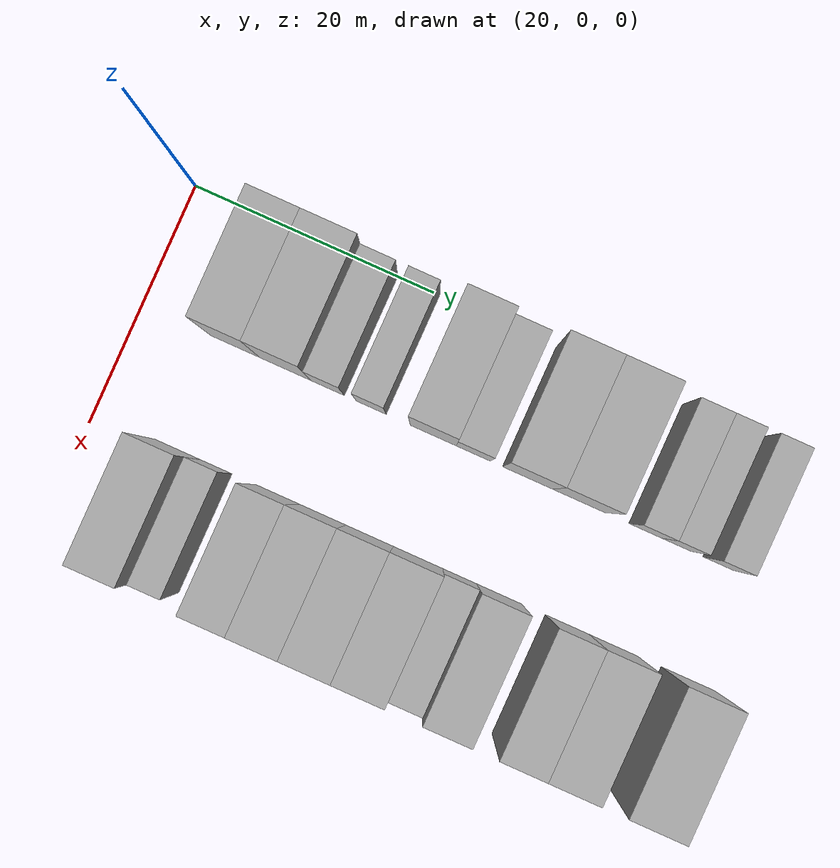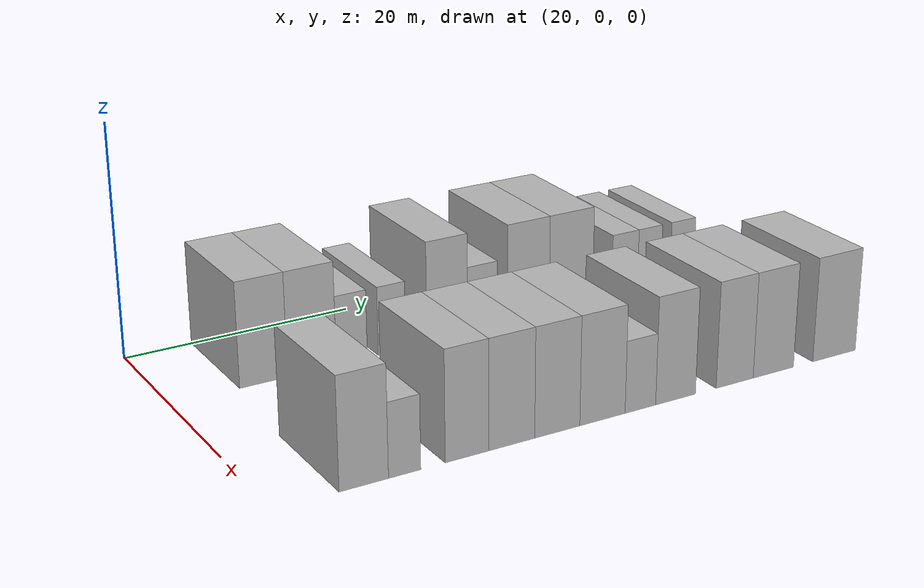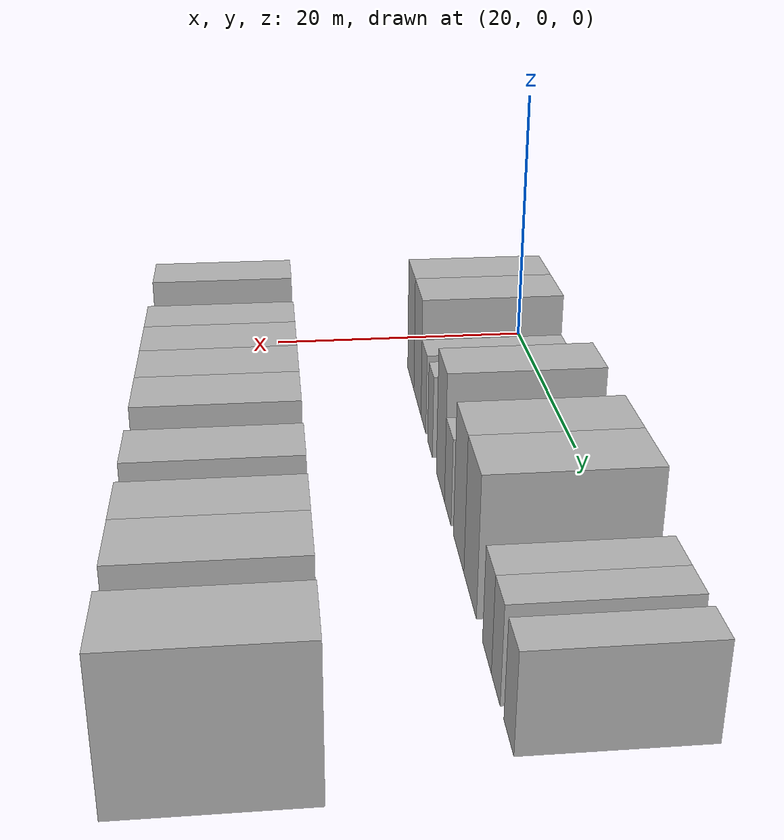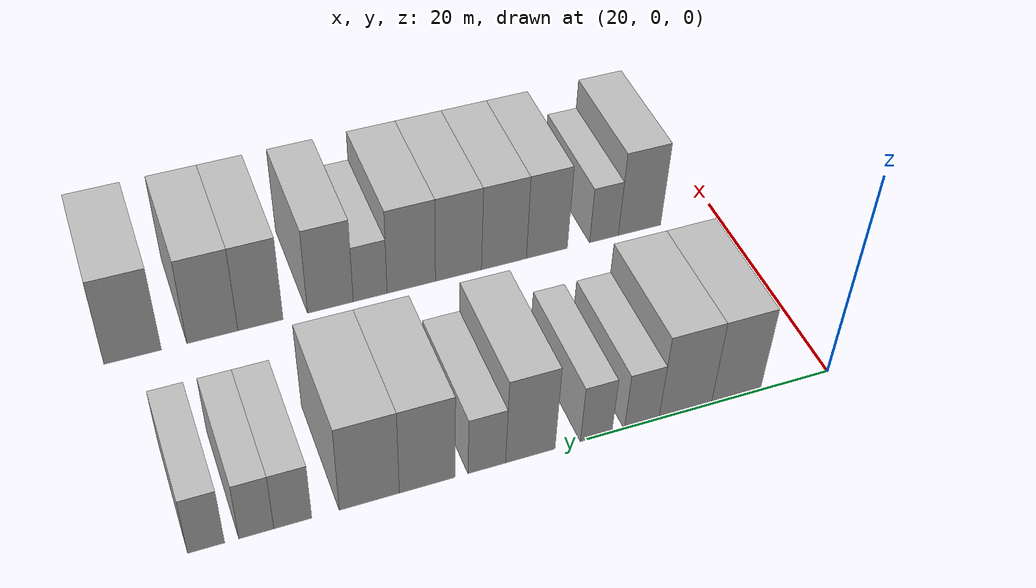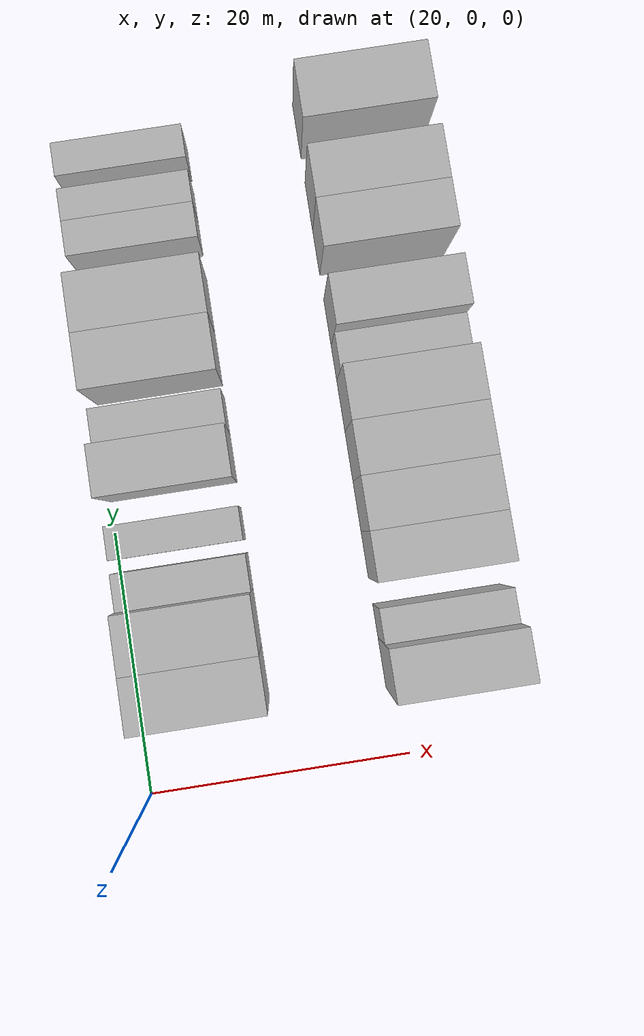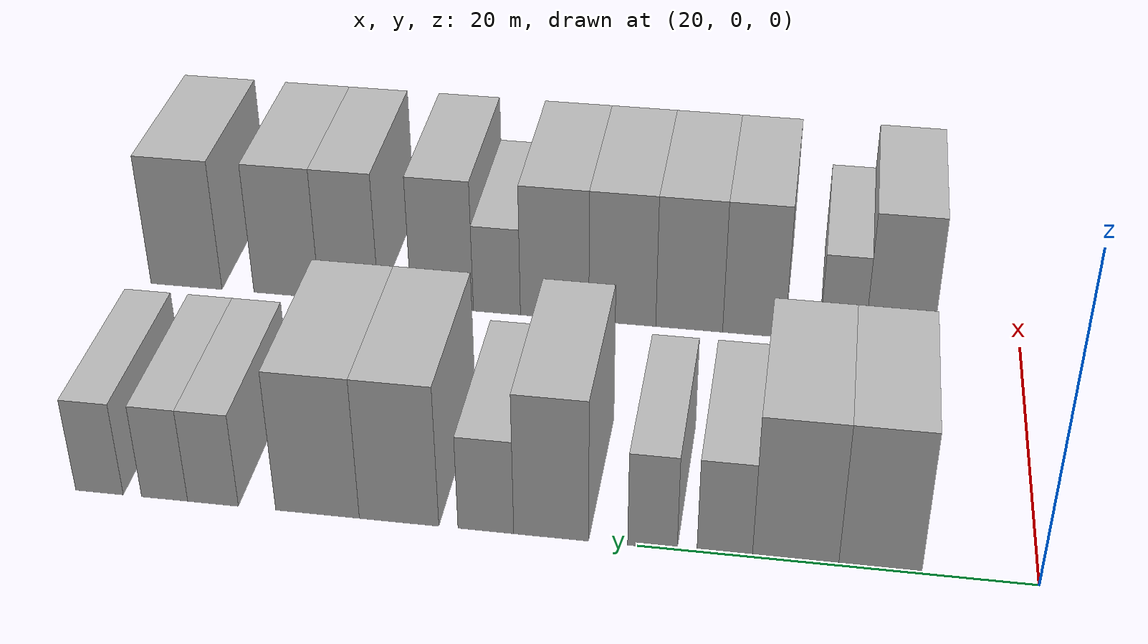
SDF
<sdf version="1.6">
 <world name="default">
  <model name="building_42">
   <static>1</static>
   <pose>25.0000 7.8379 0 0.000000 0.000000 0.000000</pose>
   <link name="link">
    <pose>0 0 4.50 0 0 0</pose>
    <collision name="collision"><geometry><box><size>10.0000 4.1087 9.0000</size></box></geometry></collision>
    <visual name="visual">
     <cast_shadows>0</cast_shadows>
     <geometry><box><size>10.0000 4.1087 9.0000</size></box></geometry>
     <material>
      <script>
       <uri>model://HANNAS_wall/materials/scripts</uri>
       <uri>model://HANNAS_wall/materials/textures</uri>
       <name>vrc/HANNAS_wall</name>
      </script>
     </material>
    </visual>
   </link>
  </model>
  <model name="building_43">
   <static>1</static>
   <pose>25.0000 12.0484 0 0.000000 0.000000 0.000000</pose>
   <link name="link">
    <pose>0 0 4.50 0 0 0</pose>
    <collision name="collision"><geometry><box><size>10.0000 4.3123 9.0000</size></box></geometry></collision>
    <visual name="visual">
     <cast_shadows>0</cast_shadows>
     <geometry><box><size>10.0000 4.3123 9.0000</size></box></geometry>
     <material>
      <script>
       <uri>model://HANNAS_wall/materials/scripts</uri>
       <uri>model://HANNAS_wall/materials/textures</uri>
       <name>vrc/HANNAS_wall</name>
      </script>
     </material>
    </visual>
   </link>
  </model>
  <model name="building_44">
   <static>1</static>
   <pose>25.0000 15.6020 0 0.000000 0.000000 0.000000</pose>
   <link name="link">
    <pose>0 0 3.00 0 0 0</pose>
    <collision name="collision"><geometry><box><size>10.0000 2.7947 6.0000</size></box></geometry></collision>
    <visual name="visual">
     <cast_shadows>0</cast_shadows>
     <geometry><box><size>10.0000 2.7947 6.0000</size></box></geometry>
     <material>
      <script>
       <uri>model://HANNAS_wall/materials/scripts</uri>
       <uri>model://HANNAS_wall/materials/textures</uri>
       <name>vrc/HANNAS_wall</name>
      </script>
     </material>
    </visual>
   </link>
  </model>
  <model name="building_45">
   <static>1</static>
   <pose>25.0000 19.2593 0 0.000000 0.000000 0.000000</pose>
   <link name="link">
    <pose>0 0 3.00 0 0 0</pose>
    <collision name="collision"><geometry><box><size>10.0000 2.5199 6.0000</size></box></geometry></collision>
    <visual name="visual">
     <cast_shadows>0</cast_shadows>
     <geometry><box><size>10.0000 2.5199 6.0000</size></box></geometry>
     <material>
      <script>
       <uri>model://HANNAS_wall/materials/scripts</uri>
       <uri>model://HANNAS_wall/materials/textures</uri>
       <name>vrc/HANNAS_wall</name>
      </script>
     </material>
    </visual>
   </link>
  </model>
  <model name="building_46">
   <static>1</static>
   <pose>25.0000 24.4487 0 0.000000 0.000000 0.000000</pose>
   <link name="link">
    <pose>0 0 4.50 0 0 0</pose>
    <collision name="collision"><geometry><box><size>10.0000 3.8589 9.0000</size></box></geometry></collision>
    <visual name="visual">
     <cast_shadows>0</cast_shadows>
     <geometry><box><size>10.0000 3.8589 9.0000</size></box></geometry>
     <material>
      <script>
       <uri>model://HANNAS_wall/materials/scripts</uri>
       <uri>model://HANNAS_wall/materials/textures</uri>
       <name>vrc/HANNAS_wall</name>
      </script>
     </material>
    </visual>
   </link>
  </model>
  <model name="building_47">
   <static>1</static>
   <pose>25.0000 27.8278 0 0.000000 0.000000 0.000000</pose>
   <link name="link">
    <pose>0 0 3.00 0 0 0</pose>
    <collision name="collision"><geometry><box><size>10.0000 2.8993 6.0000</size></box></geometry></collision>
    <visual name="visual">
     <cast_shadows>0</cast_shadows>
     <geometry><box><size>10.0000 2.8993 6.0000</size></box></geometry>
     <material>
      <script>
       <uri>model://HANNAS_wall/materials/scripts</uri>
       <uri>model://HANNAS_wall/materials/textures</uri>
       <name>vrc/HANNAS_wall</name>
      </script>
     </material>
    </visual>
   </link>
  </model>
  <model name="building_48">
   <static>1</static>
   <pose>25.0000 32.3691 0 0.000000 0.000000 0.000000</pose>
   <link name="link">
    <pose>0 0 4.50 0 0 0</pose>
    <collision name="collision"><geometry><box><size>10.0000 4.1834 9.0000</size></box></geometry></collision>
    <visual name="visual">
     <cast_shadows>0</cast_shadows>
     <geometry><box><size>10.0000 4.1834 9.0000</size></box></geometry>
     <material>
      <script>
       <uri>model://HANNAS_wall/materials/scripts</uri>
       <uri>model://HANNAS_wall/materials/textures</uri>
       <name>vrc/HANNAS_wall</name>
      </script>
     </material>
    </visual>
   </link>
  </model>
  <model name="building_49">
   <static>1</static>
   <pose>25.0000 36.6838 0 0.000000 0.000000 0.000000</pose>
   <link name="link">
    <pose>0 0 4.50 0 0 0</pose>
    <collision name="collision"><geometry><box><size>10.0000 4.4460 9.0000</size></box></geometry></collision>
    <visual name="visual">
     <cast_shadows>0</cast_shadows>
     <geometry><box><size>10.0000 4.4460 9.0000</size></box></geometry>
     <material>
      <script>
       <uri>model://HANNAS_wall/materials/scripts</uri>
       <uri>model://HANNAS_wall/materials/textures</uri>
       <name>vrc/HANNAS_wall</name>
      </script>
     </material>
    </visual>
   </link>
  </model>
  <model name="building_50">
   <static>1</static>
   <pose>25.0000 42.2739 0 0.000000 0.000000 0.000000</pose>
   <link name="link">
    <pose>0 0 3.00 0 0 0</pose>
    <collision name="collision"><geometry><box><size>10.0000 2.7342 6.0000</size></box></geometry></collision>
    <visual name="visual">
     <cast_shadows>0</cast_shadows>
     <geometry><box><size>10.0000 2.7342 6.0000</size></box></geometry>
     <material>
      <script>
       <uri>model://HANNAS_wall/materials/scripts</uri>
       <uri>model://HANNAS_wall/materials/textures</uri>
       <name>vrc/HANNAS_wall</name>
      </script>
     </material>
    </visual>
   </link>
  </model>
  <model name="building_51">
   <static>1</static>
   <pose>25.0000 44.8899 0 0.000000 0.000000 0.000000</pose>
   <link name="link">
    <pose>0 0 3.00 0 0 0</pose>
    <collision name="collision"><geometry><box><size>10.0000 2.4979 6.0000</size></box></geometry></collision>
    <visual name="visual">
     <cast_shadows>0</cast_shadows>
     <geometry><box><size>10.0000 2.4979 6.0000</size></box></geometry>
     <material>
      <script>
       <uri>model://HANNAS_wall/materials/scripts</uri>
       <uri>model://HANNAS_wall/materials/textures</uri>
       <name>vrc/HANNAS_wall</name>
      </script>
     </material>
    </visual>
   </link>
  </model>
  <model name="building_52">
   <static>1</static>
   <pose>25.0000 48.4372 0 0.000000 0.000000 0.000000</pose>
   <link name="link">
    <pose>0 0 3.00 0 0 0</pose>
    <collision name="collision"><geometry><box><size>10.0000 2.5965 6.0000</size></box></geometry></collision>
    <visual name="visual">
     <cast_shadows>0</cast_shadows>
     <geometry><box><size>10.0000 2.5965 6.0000</size></box></geometry>
     <material>
      <script>
       <uri>model://HANNAS_wall/materials/scripts</uri>
       <uri>model://HANNAS_wall/materials/textures</uri>
       <name>vrc/HANNAS_wall</name>
      </script>
     </material>
    </visual>
   </link>
  </model>
  <model name="building_136">
   <static>1</static>
   <pose>44.0000 7.0386 0 0.000000 0.000000 0.000000</pose>
   <link name="link">
    <pose>0 0 4.50 0 0 0</pose>
    <collision name="collision"><geometry><box><size>10.0000 3.8967 9.0000</size></box></geometry></collision>
    <visual name="visual">
     <cast_shadows>0</cast_shadows>
     <geometry><box><size>10.0000 3.8967 9.0000</size></box></geometry>
     <material>
      <script>
       <uri>model://HANNAS_wall/materials/scripts</uri>
       <uri>model://HANNAS_wall/materials/textures</uri>
       <name>vrc/HANNAS_wall</name>
      </script>
     </material>
    </visual>
   </link>
  </model>
  <model name="building_137">
   <static>1</static>
   <pose>44.0000 10.2930 0 0.000000 0.000000 0.000000</pose>
   <link name="link">
    <pose>0 0 3.00 0 0 0</pose>
    <collision name="collision"><geometry><box><size>10.0000 2.6122 6.0000</size></box></geometry></collision>
    <visual name="visual">
     <cast_shadows>0</cast_shadows>
     <geometry><box><size>10.0000 2.6122 6.0000</size></box></geometry>
     <material>
      <script>
       <uri>model://HANNAS_wall/materials/scripts</uri>
       <uri>model://HANNAS_wall/materials/textures</uri>
       <name>vrc/HANNAS_wall</name>
      </script>
     </material>
    </visual>
   </link>
  </model>
  <model name="building_138">
   <static>1</static>
   <pose>44.0000 15.4236 0 0.000000 0.000000 0.000000</pose>
   <link name="link">
    <pose>0 0 4.50 0 0 0</pose>
    <collision name="collision"><geometry><box><size>10.0000 3.6492 9.0000</size></box></geometry></collision>
    <visual name="visual">
     <cast_shadows>0</cast_shadows>
     <geometry><box><size>10.0000 3.6492 9.0000</size></box></geometry>
     <material>
      <script>
       <uri>model://HANNAS_wall/materials/scripts</uri>
       <uri>model://HANNAS_wall/materials/textures</uri>
       <name>vrc/HANNAS_wall</name>
      </script>
     </material>
    </visual>
   </link>
  </model>
  <model name="building_139">
   <static>1</static>
   <pose>44.0000 19.2238 0 0.000000 0.000000 0.000000</pose>
   <link name="link">
    <pose>0 0 4.50 0 0 0</pose>
    <collision name="collision"><geometry><box><size>10.0000 3.9513 9.0000</size></box></geometry></collision>
    <visual name="visual">
     <cast_shadows>0</cast_shadows>
     <geometry><box><size>10.0000 3.9513 9.0000</size></box></geometry>
     <material>
      <script>
       <uri>model://HANNAS_wall/materials/scripts</uri>
       <uri>model://HANNAS_wall/materials/textures</uri>
       <name>vrc/HANNAS_wall</name>
      </script>
     </material>
    </visual>
   </link>
  </model>
  <model name="building_140">
   <static>1</static>
   <pose>44.0000 23.1921 0 0.000000 0.000000 0.000000</pose>
   <link name="link">
    <pose>0 0 4.50 0 0 0</pose>
    <collision name="collision"><geometry><box><size>10.0000 3.9852 9.0000</size></box></geometry></collision>
    <visual name="visual">
     <cast_shadows>0</cast_shadows>
     <geometry><box><size>10.0000 3.9852 9.0000</size></box></geometry>
     <material>
      <script>
       <uri>model://HANNAS_wall/materials/scripts</uri>
       <uri>model://HANNAS_wall/materials/textures</uri>
       <name>vrc/HANNAS_wall</name>
      </script>
     </material>
    </visual>
   </link>
  </model>
  <model name="building_141">
   <static>1</static>
   <pose>44.0000 27.2405 0 0.000000 0.000000 0.000000</pose>
   <link name="link">
    <pose>0 0 4.50 0 0 0</pose>
    <collision name="collision"><geometry><box><size>10.0000 4.1117 9.0000</size></box></geometry></collision>
    <visual name="visual">
     <cast_shadows>0</cast_shadows>
     <geometry><box><size>10.0000 4.1117 9.0000</size></box></geometry>
     <material>
      <script>
       <uri>model://HANNAS_wall/materials/scripts</uri>
       <uri>model://HANNAS_wall/materials/textures</uri>
       <name>vrc/HANNAS_wall</name>
      </script>
     </material>
    </visual>
   </link>
  </model>
  <model name="building_142">
   <static>1</static>
   <pose>44.0000 30.7181 0 0.000000 0.000000 0.000000</pose>
   <link name="link">
    <pose>0 0 3.00 0 0 0</pose>
    <collision name="collision"><geometry><box><size>10.0000 2.8433 6.0000</size></box></geometry></collision>
    <visual name="visual">
     <cast_shadows>0</cast_shadows>
     <geometry><box><size>10.0000 2.8433 6.0000</size></box></geometry>
     <material>
      <script>
       <uri>model://HANNAS_wall/materials/scripts</uri>
       <uri>model://HANNAS_wall/materials/textures</uri>
       <name>vrc/HANNAS_wall</name>
      </script>
     </material>
    </visual>
   </link>
  </model>
  <model name="building_143">
   <static>1</static>
   <pose>44.0000 34.0332 0 0.000000 0.000000 0.000000</pose>
   <link name="link">
    <pose>0 0 4.50 0 0 0</pose>
    <collision name="collision"><geometry><box><size>10.0000 3.7869 9.0000</size></box></geometry></collision>
    <visual name="visual">
     <cast_shadows>0</cast_shadows>
     <geometry><box><size>10.0000 3.7869 9.0000</size></box></geometry>
     <material>
      <script>
       <uri>model://HANNAS_wall/materials/scripts</uri>
       <uri>model://HANNAS_wall/materials/textures</uri>
       <name>vrc/HANNAS_wall</name>
      </script>
     </material>
    </visual>
   </link>
  </model>
  <model name="building_144">
   <static>1</static>
   <pose>44.0000 39.7575 0 0.000000 0.000000 0.000000</pose>
   <link name="link">
    <pose>0 0 4.50 0 0 0</pose>
    <collision name="collision"><geometry><box><size>10.0000 3.6618 9.0000</size></box></geometry></collision>
    <visual name="visual">
     <cast_shadows>0</cast_shadows>
     <geometry><box><size>10.0000 3.6618 9.0000</size></box></geometry>
     <material>
      <script>
       <uri>model://HANNAS_wall/materials/scripts</uri>
       <uri>model://HANNAS_wall/materials/textures</uri>
       <name>vrc/HANNAS_wall</name>
      </script>
     </material>
    </visual>
   </link>
  </model>
  <model name="building_145">
   <static>1</static>
   <pose>44.0000 43.6256 0 0.000000 0.000000 0.000000</pose>
   <link name="link">
    <pose>0 0 4.50 0 0 0</pose>
    <collision name="collision"><geometry><box><size>10.0000 4.0744 9.0000</size></box></geometry></collision>
    <visual name="visual">
     <cast_shadows>0</cast_shadows>
     <geometry><box><size>10.0000 4.0744 9.0000</size></box></geometry>
     <material>
      <script>
       <uri>model://HANNAS_wall/materials/scripts</uri>
       <uri>model://HANNAS_wall/materials/textures</uri>
       <name>vrc/HANNAS_wall</name>
      </script>
     </material>
    </visual>
   </link>
  </model>
  <model name="building_146">
   <static>1</static>
   <pose>44.0000 49.8980 0 0.000000 0.000000 0.000000</pose>
   <link name="link">
    <pose>0 0 4.50 0 0 0</pose>
    <collision name="collision"><geometry><box><size>10.0000 4.4705 9.0000</size></box></geometry></collision>
    <visual name="visual">
     <cast_shadows>0</cast_shadows>
     <geometry><box><size>10.0000 4.4705 9.0000</size></box></geometry>
     <material>
      <script>
       <uri>model://HANNAS_wall/materials/scripts</uri>
       <uri>model://HANNAS_wall/materials/textures</uri>
       <name>vrc/HANNAS_wall</name>
      </script>
     </material>
    </visual>
   </link>
  </model>
 </world>
</sdf>
